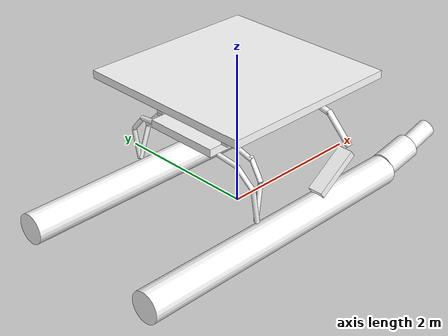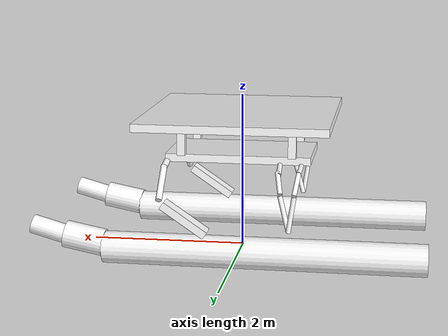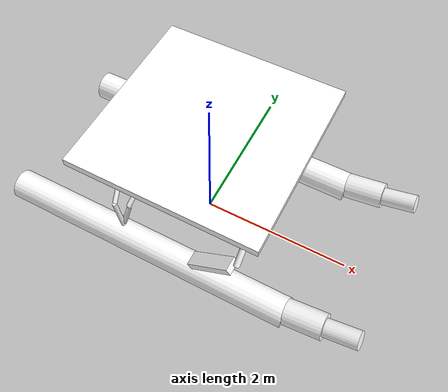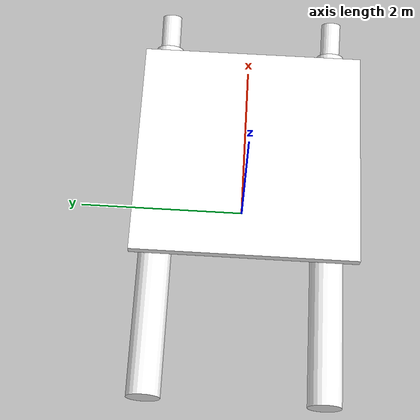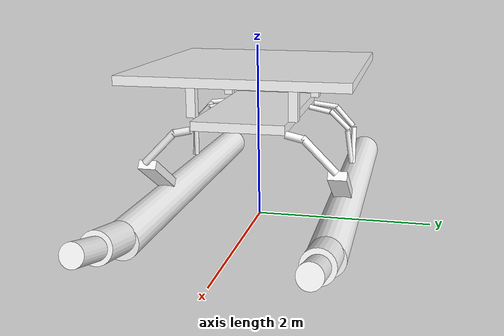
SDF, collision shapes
<?xml version="1.0" encoding="UTF-8"?>
<sdf version="1.9">
  <model name="vrx_wamv_landing">
    <pose>0 0 0 0 0 0</pose>
    <static>false</static>
    <self_collide>false</self_collide>

    <link name="vessel_body">
      <!-- MotionProfile 是 M2 唯一船体运动源；不启用 gravity/buoyancy/hydrodynamics。 -->
      <gravity>false</gravity>
      <inertial>
        <mass>180.0</mass>
        <inertia>
          <ixx>120.0</ixx>
          <ixy>0.0</ixy>
          <ixz>0.0</ixz>
          <iyy>393.0</iyy>
          <iyz>0.0</iyz>
          <izz>446.0</izz>
        </inertia>
      </inertial>

      <!-- Official VRX WAM-V base visual, imported from the pinned upstream commit at build time. -->
      <visual name="wamv_base_visual">
        <geometry>
          <mesh>
            <uri>model://vrx_wamv_landing/meshes/WAM-V-Base.dae</uri>
          </mesh>
        </geometry>
        <material>
          <ambient>1 1 1 1</ambient>
          <diffuse>1 1 1 1</diffuse>
          <specular>0.45 0.45 0.45 1</specular>
          <pbr>
            <metal>
              <albedo_map>model://vrx_wamv_landing/meshes/WAM-V_Albedo.png</albedo_map>
              <normal_map>model://vrx_wamv_landing/meshes/WAM-V_Normal.png</normal_map>
              <roughness_map>model://vrx_wamv_landing/meshes/WAM-V_Roughness.png</roughness_map>
              <metalness_map>model://vrx_wamv_landing/meshes/WAM-V_Metalness.png</metalness_map>
            </metal>
          </pbr>
        </material>
      </visual>

      <!-- Numerical collision geometry copied from VRX wamv_base.urdf.xacro. -->
      <collision name="left_float">
        <pose>-0.4 1.03 0.2 0 1.57 0</pose>
        <geometry><cylinder><length>4</length><radius>0.2</radius></cylinder></geometry>
      </collision>
      <collision name="left_mid_float">
        <pose>1.85 1.03 0.3 0 1.38 0</pose>
        <geometry><cylinder><length>0.5</length><radius>0.17</radius></cylinder></geometry>
      </collision>
      <collision name="left_front_float">
        <pose>2.3 1.03 0.4 0 1.3 0</pose>
        <geometry><cylinder><length>0.45</length><radius>0.12</radius></cylinder></geometry>
      </collision>
      <collision name="right_float">
        <pose>-0.4 -1.03 0.2 0 1.57 0</pose>
        <geometry><cylinder><length>4</length><radius>0.2</radius></cylinder></geometry>
      </collision>
      <collision name="right_mid_float">
        <pose>1.85 -1.03 0.3 0 1.38 0</pose>
        <geometry><cylinder><length>0.5</length><radius>0.17</radius></cylinder></geometry>
      </collision>
      <collision name="right_front_float">
        <pose>2.3 -1.03 0.4 0 1.3 0</pose>
        <geometry><cylinder><length>0.45</length><radius>0.12</radius></cylinder></geometry>
      </collision>

      <collision name="front_left_beam_lower">
        <pose>0.9 0.85 1.0 0.78 0 0</pose>
        <geometry><cylinder><length>0.5</length><radius>0.04</radius></cylinder></geometry>
      </collision>
      <collision name="front_right_beam_lower">
        <pose>0.9 -0.85 1.0 -0.78 0 0</pose>
        <geometry><cylinder><length>0.5</length><radius>0.04</radius></cylinder></geometry>
      </collision>
      <collision name="front_left_beam_upper">
        <pose>0.9 0.6 1.18 1.35 0 0</pose>
        <geometry><cylinder><length>0.2</length><radius>0.04</radius></cylinder></geometry>
      </collision>
      <collision name="front_right_beam_upper">
        <pose>0.9 -0.6 1.18 -1.35 0 0</pose>
        <geometry><cylinder><length>0.2</length><radius>0.04</radius></cylinder></geometry>
      </collision>

      <collision name="mid_left_beam_lower">
        <pose>-0.65 0.99 0.7 0.1 0.25 0</pose>
        <geometry><cylinder><length>0.45</length><radius>0.03</radius></cylinder></geometry>
      </collision>
      <collision name="mid_right_beam_lower">
        <pose>-0.65 -0.99 0.7 -0.1 0.25 0</pose>
        <geometry><cylinder><length>0.45</length><radius>0.03</radius></cylinder></geometry>
      </collision>
      <collision name="mid_left_beam_medium">
        <pose>-0.57 0.87 1.05 0.75 0.25 0</pose>
        <geometry><cylinder><length>0.32</length><radius>0.03</radius></cylinder></geometry>
      </collision>
      <collision name="mid_right_beam_medium">
        <pose>-0.57 -0.87 1.05 -0.75 0.25 0</pose>
        <geometry><cylinder><length>0.32</length><radius>0.03</radius></cylinder></geometry>
      </collision>
      <collision name="mid_left_beam_upper">
        <pose>-0.55 0.65 1.17 1.35 0.25 0</pose>
        <geometry><cylinder><length>0.3</length><radius>0.03</radius></cylinder></geometry>
      </collision>
      <collision name="mid_right_beam_upper">
        <pose>-0.55 -0.65 1.17 -1.35 0.25 0</pose>
        <geometry><cylinder><length>0.3</length><radius>0.03</radius></cylinder></geometry>
      </collision>

      <collision name="rear_left_beam_lower">
        <pose>-0.74 1.03 0.7 0 -0.15 0</pose>
        <geometry><cylinder><length>0.45</length><radius>0.03</radius></cylinder></geometry>
      </collision>
      <collision name="rear_right_beam_lower">
        <pose>-0.74 -1.03 0.7 0 -0.15 0</pose>
        <geometry><cylinder><length>0.45</length><radius>0.03</radius></cylinder></geometry>
      </collision>
      <collision name="rear_left_beam_medium">
        <pose>-0.79 0.91 1.05 0.75 -0.15 0</pose>
        <geometry><cylinder><length>0.32</length><radius>0.03</radius></cylinder></geometry>
      </collision>
      <collision name="rear_right_beam_medium">
        <pose>-0.79 -0.91 1.05 -0.75 -0.15 0</pose>
        <geometry><cylinder><length>0.32</length><radius>0.03</radius></cylinder></geometry>
      </collision>
      <collision name="rear_left_beam_upper">
        <pose>-0.81 0.67 1.18 1.45 -0.15 0</pose>
        <geometry><cylinder><length>0.3</length><radius>0.03</radius></cylinder></geometry>
      </collision>
      <collision name="rear_right_beam_upper">
        <pose>-0.81 -0.67 1.18 -1.45 -0.15 0</pose>
        <geometry><cylinder><length>0.3</length><radius>0.03</radius></cylinder></geometry>
      </collision>

      <collision name="left_joint">
        <pose>0.58 1.03 0.6 0 -0.6 0</pose>
        <geometry><box><size>0.65 0.2 0.1</size></box></geometry>
      </collision>
      <collision name="right_joint">
        <pose>0.58 -1.03 0.6 0 -0.6 0</pose>
        <geometry><box><size>0.65 0.2 0.1</size></box></geometry>
      </collision>
      <collision name="top_base">
        <pose>0 0 1.25 0 0 0</pose>
        <geometry><box><size>1.85 1 0.1</size></box></geometry>
      </collision>

      <!-- Project-specific supports: top_base top≈1.30 m, platform underside=1.70 m. -->
      <collision name="landing_support_front_left_collision">
        <pose>0.7 0.55 1.5 0 0 0</pose>
        <geometry><box><size>0.10 0.10 0.40</size></box></geometry>
      </collision>
      <collision name="landing_support_front_right_collision">
        <pose>0.7 -0.55 1.5 0 0 0</pose>
        <geometry><box><size>0.10 0.10 0.40</size></box></geometry>
      </collision>
      <collision name="landing_support_rear_left_collision">
        <pose>-0.7 0.55 1.5 0 0 0</pose>
        <geometry><box><size>0.10 0.10 0.40</size></box></geometry>
      </collision>
      <collision name="landing_support_rear_right_collision">
        <pose>-0.7 -0.55 1.5 0 0 0</pose>
        <geometry><box><size>0.10 0.10 0.40</size></box></geometry>
      </collision>

      <visual name="landing_support_front_left_visual">
        <pose>0.7 0.55 1.5 0 0 0</pose>
        <geometry><box><size>0.10 0.10 0.40</size></box></geometry>
        <material><ambient>0.12 0.12 0.14 1</ambient><diffuse>0.18 0.18 0.20 1</diffuse></material>
      </visual>
      <visual name="landing_support_front_right_visual">
        <pose>0.7 -0.55 1.5 0 0 0</pose>
        <geometry><box><size>0.10 0.10 0.40</size></box></geometry>
        <material><ambient>0.12 0.12 0.14 1</ambient><diffuse>0.18 0.18 0.20 1</diffuse></material>
      </visual>
      <visual name="landing_support_rear_left_visual">
        <pose>-0.7 0.55 1.5 0 0 0</pose>
        <geometry><box><size>0.10 0.10 0.40</size></box></geometry>
        <material><ambient>0.12 0.12 0.14 1</ambient><diffuse>0.18 0.18 0.20 1</diffuse></material>
      </visual>
      <visual name="landing_support_rear_right_visual">
        <pose>-0.7 -0.55 1.5 0 0 0</pose>
        <geometry><box><size>0.10 0.10 0.40</size></box></geometry>
        <material><ambient>0.12 0.12 0.14 1</ambient><diffuse>0.18 0.18 0.20 1</diffuse></material>
      </visual>

      <!-- landing_deck origin is the 2.4×2.4 m platform top-surface center. -->
      <collision name="landing_deck_collision">
        <pose relative_to="landing_deck">0 0 -0.05 0 0 0</pose>
        <geometry><box><size>2.4 2.4 0.1</size></box></geometry>
        <surface>
          <friction><ode><mu>1.0</mu><mu2>1.0</mu2></ode></friction>
        </surface>
      </collision>
      <visual name="landing_deck_visual">
        <pose relative_to="landing_deck">0 0 -0.05 0 0 0</pose>
        <geometry><box><size>2.4 2.4 0.1</size></box></geometry>
        <material>
          <ambient>0.22 0.24 0.26 1</ambient>
          <diffuse>0.30 0.32 0.34 1</diffuse>
          <specular>0.12 0.12 0.12 1</specular>
          <pbr><metal><roughness>0.55</roughness><metalness>0.15</metalness></metal></pbr>
        </material>
      </visual>

      <!-- ID0～ID3 保持现有多尺度近距布局；ID4～ID7 构成 Marine 独立共面远距 Board。 -->
      <visual name="aruco_marker_far_visual">
        <pose relative_to="landing_deck">0.45 0 0.001 0 0 0</pose>
        <cast_shadows>false</cast_shadows>
        <geometry><plane><normal>0 0 1</normal><size>0.5 0.5</size></plane></geometry>
        <material>
          <diffuse>1 1 1 1</diffuse><specular>0.4 0.4 0.4 1</specular>
          <pbr><metal><albedo_map>model://arucotag/arucotag.png</albedo_map></metal></pbr>
        </material>
      </visual>

      <visual name="aruco_marker_planar_id4_visual">
        <pose relative_to="landing_deck">0.78 0.78 0.002 0 0 0</pose>
        <cast_shadows>false</cast_shadows>
        <geometry><plane><normal>0 0 1</normal><size>0.50 0.50</size></plane></geometry>
        <material>
          <diffuse>1 1 1 1</diffuse><specular>0.4 0.4 0.4 1</specular>
          <pbr><metal><albedo_map>model://moving_deck/aruco_id4.pgm</albedo_map></metal></pbr>
        </material>
      </visual>

      <visual name="aruco_marker_planar_id5_visual">
        <pose relative_to="landing_deck">0.78 -0.78 0.002 0 0 0</pose>
        <cast_shadows>false</cast_shadows>
        <geometry><plane><normal>0 0 1</normal><size>0.50 0.50</size></plane></geometry>
        <material>
          <diffuse>1 1 1 1</diffuse><specular>0.4 0.4 0.4 1</specular>
          <pbr><metal><albedo_map>model://moving_deck/aruco_id5.pgm</albedo_map></metal></pbr>
        </material>
      </visual>

      <visual name="aruco_marker_planar_id6_visual">
        <pose relative_to="landing_deck">-0.78 0.78 0.002 0 0 0</pose>
        <cast_shadows>false</cast_shadows>
        <geometry><plane><normal>0 0 1</normal><size>0.50 0.50</size></plane></geometry>
        <material>
          <diffuse>1 1 1 1</diffuse><specular>0.4 0.4 0.4 1</specular>
          <pbr><metal><albedo_map>model://moving_deck/aruco_id6.pgm</albedo_map></metal></pbr>
        </material>
      </visual>

      <visual name="aruco_marker_planar_id7_visual">
        <pose relative_to="landing_deck">-0.78 -0.78 0.002 0 0 0</pose>
        <cast_shadows>false</cast_shadows>
        <geometry><plane><normal>0 0 1</normal><size>0.50 0.50</size></plane></geometry>
        <material>
          <diffuse>1 1 1 1</diffuse><specular>0.4 0.4 0.4 1</specular>
          <pbr><metal><albedo_map>model://moving_deck/aruco_id7.pgm</albedo_map></metal></pbr>
        </material>
      </visual>

      <visual name="aruco_marker_near_visual">
        <pose relative_to="landing_deck">-0.18 0 0.002 0 0 0</pose>
        <cast_shadows>false</cast_shadows>
        <geometry><plane><normal>0 0 1</normal><size>0.20 0.20</size></plane></geometry>
        <material>
          <diffuse>1 1 1 1</diffuse><specular>0.4 0.4 0.4 1</specular>
          <pbr><metal><albedo_map>model://moving_deck/aruco_id1.pgm</albedo_map></metal></pbr>
        </material>
      </visual>

      <visual name="aruco_marker_ultra_near_visual">
        <pose relative_to="landing_deck">0.05 0 0.003 0 0 0</pose>
        <cast_shadows>false</cast_shadows>
        <geometry><plane><normal>0 0 1</normal><size>0.04 0.04</size></plane></geometry>
        <material>
          <diffuse>1 1 1 1</diffuse><specular>0.4 0.4 0.4 1</specular>
          <pbr><metal><albedo_map>model://moving_deck/aruco_id2.pgm</albedo_map></metal></pbr>
        </material>
      </visual>

      <visual name="aruco_marker_contact_visual">
        <pose relative_to="landing_deck">0 0 0.004 0 0 0</pose>
        <cast_shadows>false</cast_shadows>
        <geometry><plane><normal>0 0 1</normal><size>0.02 0.02</size></plane></geometry>
        <material>
          <diffuse>1 1 1 1</diffuse><specular>0.4 0.4 0.4 1</specular>
          <pbr><metal><albedo_map>model://moving_deck/aruco_id3.pgm</albedo_map></metal></pbr>
        </material>
      </visual>
    </link>

    <frame name="landing_deck" attached_to="vessel_body">
      <pose>0 0 1.8 0 0 0</pose>
    </frame>

    <plugin filename="gz-sim-velocity-control-system" name="gz::sim::systems::VelocityControl"/>
    <plugin filename="gz-sim-odometry-publisher-system" name="gz::sim::systems::OdometryPublisher">
      <odom_frame>world</odom_frame>
      <robot_base_frame>vessel_body</robot_base_frame>
      <dimensions>3</dimensions>
      <odom_publish_frequency>50</odom_publish_frequency>
      <odom_topic>/simulation/deck/ground_truth_raw</odom_topic>
    </plugin>
  </model>
</sdf>
